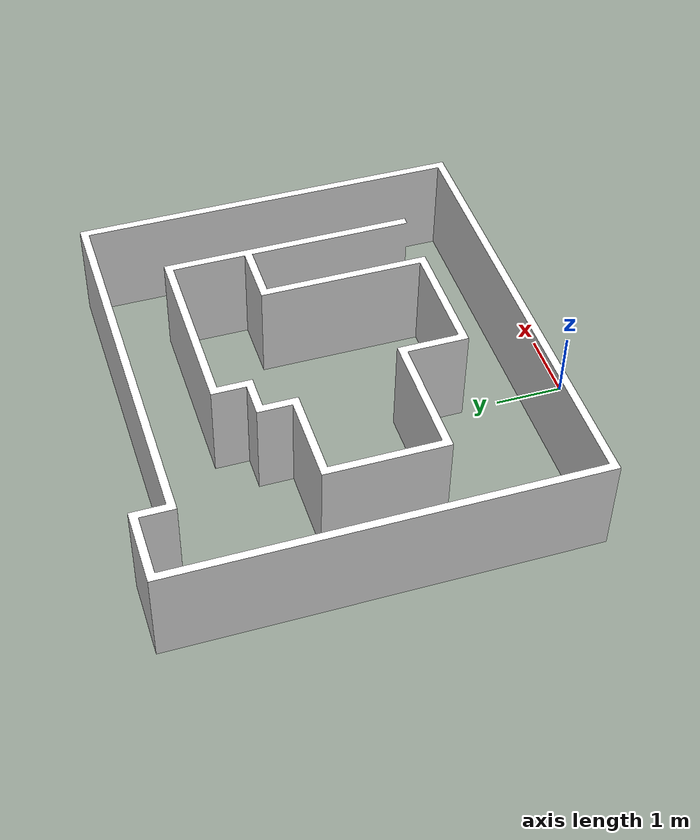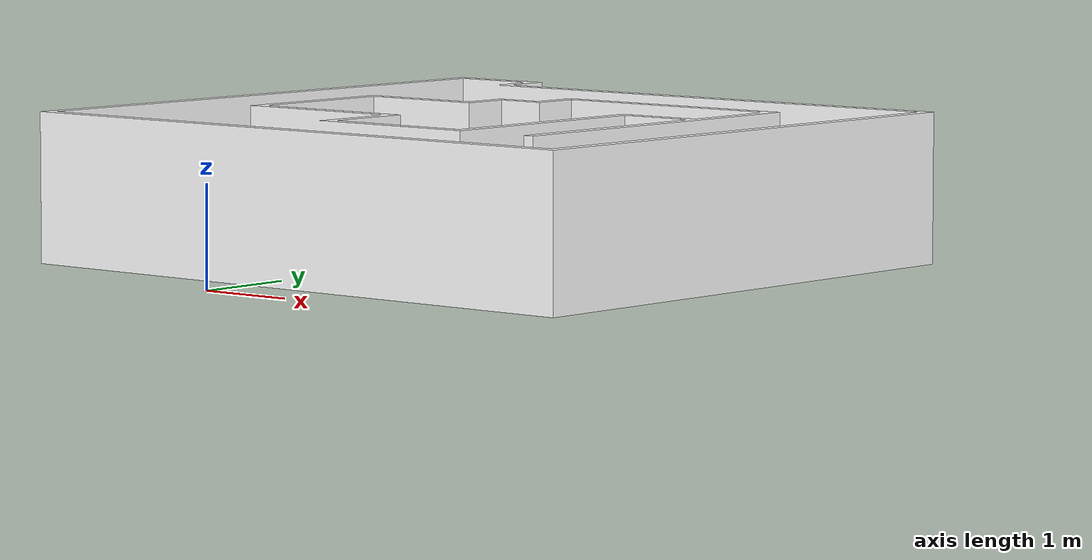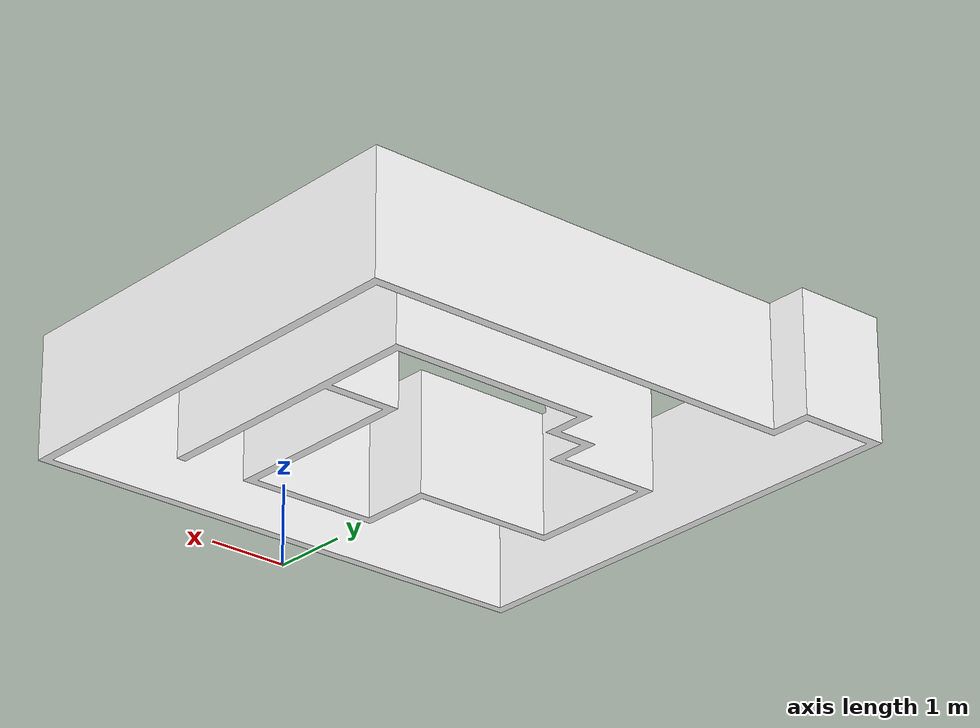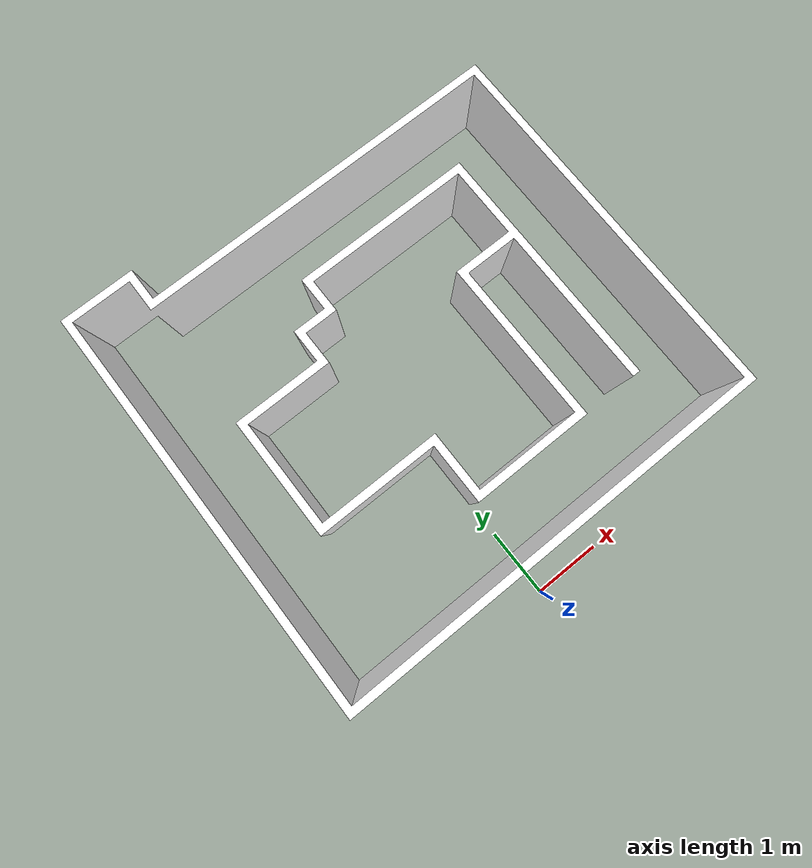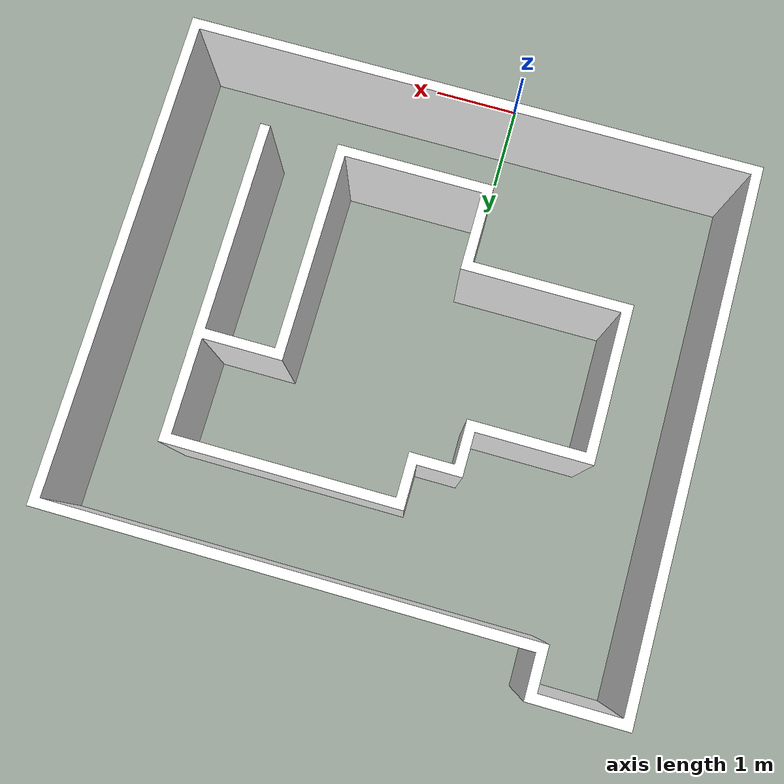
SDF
<?xml version="1.0" ?>
<sdf version="1.5">
  <model name="room">
    <static>true</static>
    <link name="room_link">
      <visual name="visual">
        <geometry>
          <mesh>
            <uri>model://room/meshes/room.dae</uri>
          </mesh>
        </geometry>
      </visual>
      <collision name="collision">
        <pose>0 0 0 0 0 0</pose>
        <geometry>
          <mesh>
            <uri>model://room/meshes/room.dae</uri>
          </mesh>
        </geometry>
      </collision>
    </link>
  </model>
</sdf>
